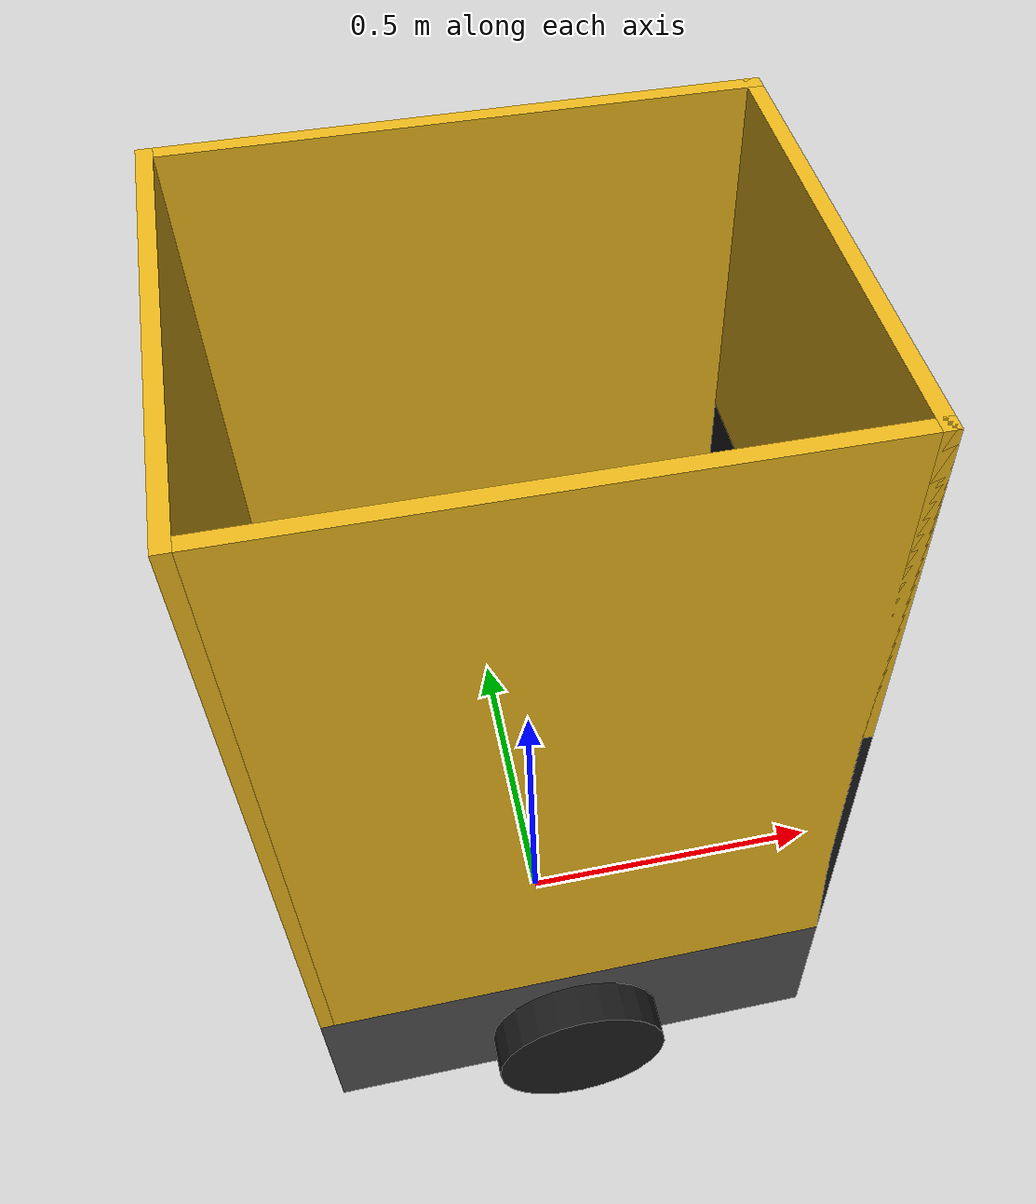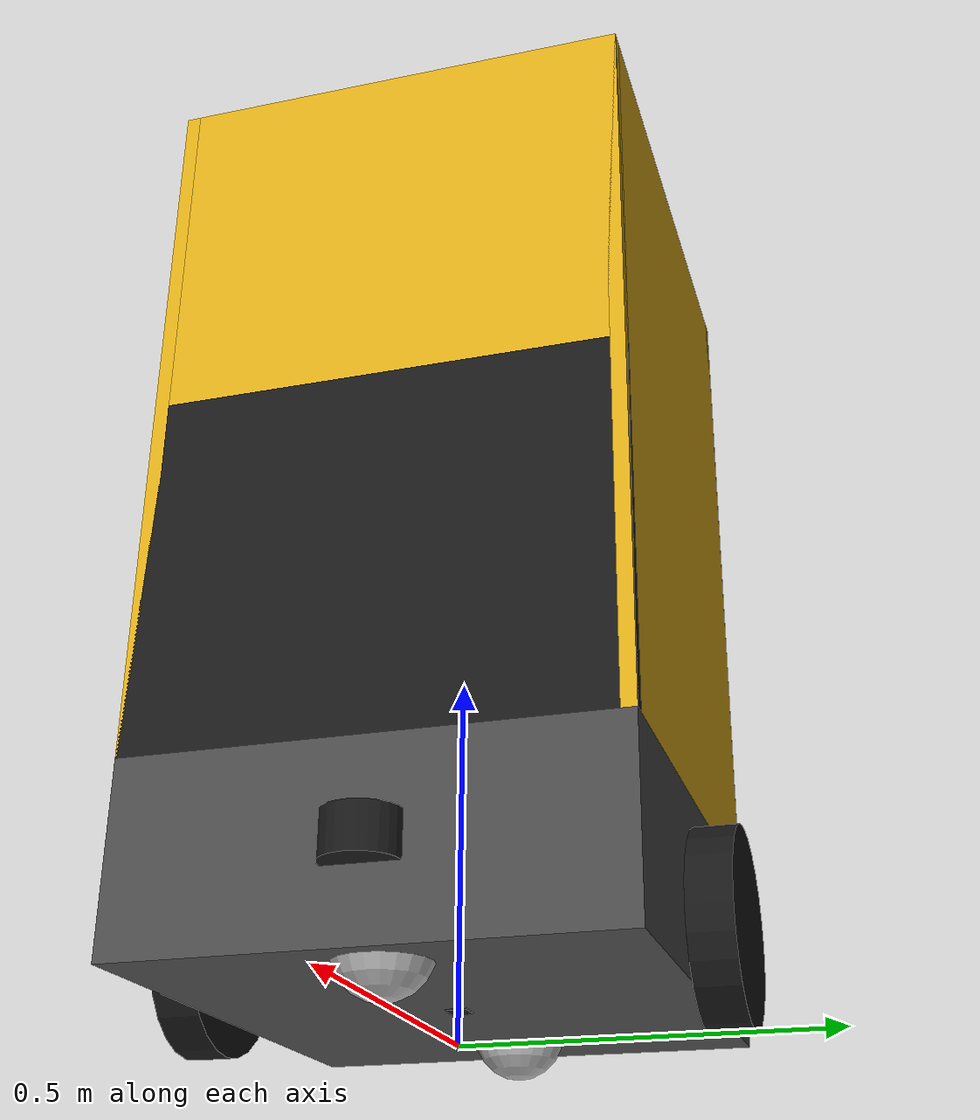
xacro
<?xml version="1.0"?>
<robot name="warehouse_robot" xmlns:xacro="http://www.ros.org/wiki/xacro">

  <!-- Absolute path to the controller manager config, supplied by the launch file -->
  <xacro:arg name="controller_config_path" default=""/>

  <!-- Chassis -->
  <xacro:property name="base_length" value="0.75"/>
  <xacro:property name="base_width" value="0.65"/>
  <xacro:property name="base_height" value="0.25"/>
  <xacro:property name="base_mass" value="16.0"/>

  <!-- Drive wheels -->
  <xacro:property name="wheel_radius" value="0.13"/>
  <xacro:property name="wheel_width" value="0.06"/>
  <xacro:property name="wheel_mass" value="0.75"/>

  <!-- Caster wheels -->
  <xacro:property name="caster_radius" value="0.065"/>
  <xacro:property name="caster_mass" value="0.2"/>

  <!-- Cargo cage: thin walls around the chassis, front wall has a hinged flap -->
  <xacro:property name="cage_wall_height" value="1.0"/>
  <xacro:property name="cage_wall_thickness" value="0.02"/>
  <xacro:property name="cage_flap_height" value="0.5"/>
  <xacro:property name="cage_wall_mass" value="0.5"/>
  <xacro:property name="cage_flap_mass" value="0.3"/>

  <!-- Cage floor: doubles as an ejector belt (gz-sim TrackController) -->
  <xacro:property name="cage_floor_thickness" value="0.01"/>
  <xacro:property name="cage_floor_mass" value="0.4"/>

  <!-- Bottom-facing camera, for reading floor AprilTags -->
  <xacro:property name="bottom_camera_size" value="0.03"/>
  <xacro:property name="bottom_camera_mass" value="0.03"/>
  <!-- Height of the lens above the floor: bigger gap widens the footprint the camera
       sees on the ground, so a tag stays in frame longer as the robot drives over it -->
  <xacro:property name="bottom_camera_ground_gap" value="0.043"/>

  <!-- Front 2D lidar -->
  <xacro:property name="lidar_radius" value="0.05"/>
  <xacro:property name="lidar_height" value="0.06"/>
  <xacro:property name="lidar_mass" value="0.15"/>

  <!-- IMU -->
  <xacro:property name="imu_size" value="0.02"/>
  <xacro:property name="imu_mass" value="0.01"/>

  <!-- Derived placement offsets -->
  <xacro:property name="ground_clearance" value="0.04"/>
  <xacro:property name="base_z" value="${wheel_radius + ground_clearance}"/>
  <xacro:property name="wheel_z_offset" value="${wheel_radius - base_z}"/>
  <xacro:property name="caster_z_offset" value="${caster_radius - base_z}"/>
  <xacro:property name="caster_x_offset" value="${base_length / 2 - caster_radius - 0.02}"/>
  <xacro:property name="bottom_camera_z_offset" value="${bottom_camera_ground_gap + bottom_camera_size/2 - base_z}"/>
  <xacro:property name="cage_base_z" value="${base_height / 2.0}"/>
  <xacro:property name="cage_front_upper_height" value="${cage_wall_height - cage_flap_height}"/>
  <xacro:property name="cage_floor_length" value="${base_length - 2*cage_wall_thickness}"/>
  <xacro:property name="cage_floor_width" value="${base_width - 2*cage_wall_thickness}"/>

  <material name="body_gray">
    <color rgba="0.3 0.3 0.3 1.0"/>
  </material>
  <material name="wheel_black">
    <color rgba="0.1 0.1 0.1 1.0"/>
  </material>
  <material name="caster_silver">
    <color rgba="0.7 0.7 0.7 1.0"/>
  </material>
  <material name="cage_yellow">
    <color rgba="0.9 0.7 0.1 1.0"/>
  </material>

  <!-- base_footprint sits on the ground and is the robot's control/odometry origin -->
  <link name="base_footprint"/>

  <joint name="base_joint" type="fixed">
    <parent link="base_footprint"/>
    <child link="base_link"/>
    <origin xyz="0 0 ${base_z}" rpy="0 0 0"/>
  </joint>

  <link name="base_link">
    <visual>
      <geometry>
        <box size="${base_length} ${base_width} ${base_height}"/>
      </geometry>
      <material name="body_gray"/>
    </visual>
    <collision>
      <geometry>
        <box size="${base_length} ${base_width} ${base_height}"/>
      </geometry>
    </collision>
    <inertial>
      <mass value="${base_mass}"/>
      <inertia
        ixx="${base_mass / 12.0 * (base_width*base_width + base_height*base_height)}" ixy="0" ixz="0"
        iyy="${base_mass / 12.0 * (base_length*base_length + base_height*base_height)}" iyz="0"
        izz="${base_mass / 12.0 * (base_length*base_length + base_width*base_width)}"/>
    </inertial>
  </link>

  <!-- Driven wheel: mounted on the left/right sides, midway along the chassis -->
  <xacro:macro name="drive_wheel" params="prefix reflect">
    <link name="${prefix}_wheel_link">
      <visual>
        <origin xyz="0 0 0" rpy="${pi/2} 0 0"/>
        <geometry>
          <cylinder radius="${wheel_radius}" length="${wheel_width}"/>
        </geometry>
        <material name="wheel_black"/>
      </visual>
      <collision>
        <origin xyz="0 0 0" rpy="${pi/2} 0 0"/>
        <geometry>
          <cylinder radius="${wheel_radius}" length="${wheel_width}"/>
        </geometry>
      </collision>
      <inertial>
        <mass value="${wheel_mass}"/>
        <inertia
          ixx="${wheel_mass / 12.0 * (3*wheel_radius*wheel_radius + wheel_width*wheel_width)}" ixy="0" ixz="0"
          iyy="${wheel_mass / 12.0 * (3*wheel_radius*wheel_radius + wheel_width*wheel_width)}" iyz="0"
          izz="${wheel_mass / 2.0 * wheel_radius*wheel_radius}"/>
      </inertial>
    </link>

    <joint name="${prefix}_wheel_joint" type="continuous">
      <parent link="base_link"/>
      <child link="${prefix}_wheel_link"/>
      <origin xyz="0 ${reflect * (base_width/2 + wheel_width/2)} ${wheel_z_offset}" rpy="0 0 0"/>
      <axis xyz="0 1 0"/>
    </joint>

    <gazebo reference="${prefix}_wheel_link">
      <material>Gazebo/Black</material>
    </gazebo>
  </xacro:macro>

  <xacro:drive_wheel prefix="left" reflect="1"/>
  <xacro:drive_wheel prefix="right" reflect="-1"/>

  <!-- Caster wheel: unpowered, frictionless sphere for front/back support -->
  <xacro:macro name="caster_wheel" params="prefix x_offset">
    <link name="${prefix}_caster_link">
      <visual>
        <geometry>
          <sphere radius="${caster_radius}"/>
        </geometry>
        <material name="caster_silver"/>
      </visual>
      <collision>
        <geometry>
          <sphere radius="${caster_radius}"/>
        </geometry>
      </collision>
      <inertial>
        <mass value="${caster_mass}"/>
        <inertia
          ixx="${2.0/5.0 * caster_mass * caster_radius*caster_radius}" ixy="0" ixz="0"
          iyy="${2.0/5.0 * caster_mass * caster_radius*caster_radius}" iyz="0"
          izz="${2.0/5.0 * caster_mass * caster_radius*caster_radius}"/>
      </inertial>
    </link>

    <joint name="${prefix}_caster_joint" type="fixed">
      <parent link="base_link"/>
      <child link="${prefix}_caster_link"/>
      <origin xyz="${x_offset} 0 ${caster_z_offset}" rpy="0 0 0"/>
    </joint>

    <gazebo reference="${prefix}_caster_link">
      <material>Gazebo/DarkGrey</material>
      <mu1>0.0</mu1>
      <mu2>0.0</mu2>
    </gazebo>
  </xacro:macro>

  <xacro:caster_wheel prefix="front" x_offset="${caster_x_offset}"/>
  <xacro:caster_wheel prefix="back" x_offset="${-caster_x_offset}"/>

  <!-- Fixed cage wall: a thin box sitting on top of the chassis -->
  <xacro:macro name="cage_wall" params="name size_x size_y size_z origin_x origin_y origin_z">
    <link name="${name}_wall_link">
      <visual>
        <geometry>
          <box size="${size_x} ${size_y} ${size_z}"/>
        </geometry>
        <material name="cage_yellow"/>
      </visual>
      <collision>
        <geometry>
          <box size="${size_x} ${size_y} ${size_z}"/>
        </geometry>
      </collision>
      <inertial>
        <mass value="${cage_wall_mass}"/>
        <inertia
          ixx="${cage_wall_mass / 12.0 * (size_y*size_y + size_z*size_z)}" ixy="0" ixz="0"
          iyy="${cage_wall_mass / 12.0 * (size_x*size_x + size_z*size_z)}" iyz="0"
          izz="${cage_wall_mass / 12.0 * (size_x*size_x + size_y*size_y)}"/>
      </inertial>
    </link>

    <joint name="${name}_wall_joint" type="fixed">
      <parent link="base_link"/>
      <child link="${name}_wall_link"/>
      <origin xyz="${origin_x} ${origin_y} ${origin_z}" rpy="0 0 0"/>
    </joint>

    <gazebo reference="${name}_wall_link">
      <material>Gazebo/Yellow</material>
    </gazebo>
  </xacro:macro>

  <xacro:cage_wall name="back"
    size_x="${cage_wall_thickness}" size_y="${base_width}" size_z="${cage_wall_height}"
    origin_x="${-(base_length/2 - cage_wall_thickness/2)}" origin_y="0"
    origin_z="${cage_base_z + cage_wall_height/2}"/>

  <xacro:cage_wall name="left"
    size_x="${base_length}" size_y="${cage_wall_thickness}" size_z="${cage_wall_height}"
    origin_x="0" origin_y="${base_width/2 - cage_wall_thickness/2}"
    origin_z="${cage_base_z + cage_wall_height/2}"/>

  <xacro:cage_wall name="right"
    size_x="${base_length}" size_y="${cage_wall_thickness}" size_z="${cage_wall_height}"
    origin_x="0" origin_y="${-(base_width/2 - cage_wall_thickness/2)}"
    origin_z="${cage_base_z + cage_wall_height/2}"/>

  <!-- Front wall: fixed upper section plus a hinged flap covering the bottom cage_flap_height -->
  <xacro:cage_wall name="front_upper"
    size_x="${cage_wall_thickness}" size_y="${base_width}" size_z="${cage_front_upper_height}"
    origin_x="${base_length/2 - cage_wall_thickness/2}" origin_y="0"
    origin_z="${cage_base_z + cage_flap_height + cage_front_upper_height/2}"/>

  <!-- Front flap: hinged at its bottom edge, folds down/outward to open like a tailgate -->
  <link name="front_flap_link">
    <visual>
      <origin xyz="0 0 ${cage_flap_height/2}" rpy="0 0 0"/>
      <geometry>
        <box size="${cage_wall_thickness} ${base_width} ${cage_flap_height}"/>
      </geometry>
      <material name="wheel_black"/>
    </visual>
    <collision>
      <origin xyz="0 0 ${cage_flap_height/2}" rpy="0 0 0"/>
      <geometry>
        <box size="${cage_wall_thickness} ${base_width} ${cage_flap_height}"/>
      </geometry>
    </collision>
    <inertial>
      <origin xyz="0 0 ${cage_flap_height/2}" rpy="0 0 0"/>
      <mass value="${cage_flap_mass}"/>
      <inertia
        ixx="${cage_flap_mass / 12.0 * (base_width*base_width + cage_flap_height*cage_flap_height)}" ixy="0" ixz="0"
        iyy="${cage_flap_mass / 12.0 * (cage_wall_thickness*cage_wall_thickness + cage_flap_height*cage_flap_height)}" iyz="0"
        izz="${cage_flap_mass / 12.0 * (cage_wall_thickness*cage_wall_thickness + base_width*base_width)}"/>
    </inertial>
  </link>

  <joint name="front_flap_joint" type="revolute">
    <parent link="base_link"/>
    <child link="front_flap_link"/>
    <origin xyz="${base_length/2 - cage_wall_thickness/2} 0 ${cage_base_z}" rpy="0 0 0"/>
    <axis xyz="0 1 0"/>
    <!-- 0 = closed (vertical), pi/2 = fully open (folded flat outward) -->
    <limit lower="0" upper="${pi/2}" effort="10.0" velocity="1.0"/>
    <dynamics damping="0.2" friction="0.05"/>
  </joint>

  <gazebo reference="front_flap_link">
    <material>Gazebo/Black</material>
  </gazebo>

  <link name="cage_floor_link">
    <visual>
      <geometry>
        <box size="${cage_floor_length} ${cage_floor_width} ${cage_floor_thickness}"/>
      </geometry>
      <material name="wheel_black"/>
    </visual>
    <collision>
      <geometry>
        <box size="${cage_floor_length} ${cage_floor_width} ${cage_floor_thickness}"/>
      </geometry>
    </collision>
    <inertial>
      <mass value="${cage_floor_mass}"/>
      <inertia
        ixx="${cage_floor_mass / 12.0 * (cage_floor_width*cage_floor_width + cage_floor_thickness*cage_floor_thickness)}" ixy="0" ixz="0"
        iyy="${cage_floor_mass / 12.0 * (cage_floor_length*cage_floor_length + cage_floor_thickness*cage_floor_thickness)}" iyz="0"
        izz="${cage_floor_mass / 12.0 * (cage_floor_length*cage_floor_length + cage_floor_width*cage_floor_width)}"/>
    </inertial>
  </link>

  <joint name="cage_floor_joint" type="fixed">
    <parent link="base_link"/>
    <child link="cage_floor_link"/>
    <origin xyz="0 0 ${cage_base_z + cage_floor_thickness/2}" rpy="0 0 0"/>
  </joint>

  <!-- Fixed joints get lumped into their parent by the URDF->SDF conversion, which would
       merge cage_floor_link into base_link and leave TrackController nothing to reference -->
  <gazebo reference="cage_floor_joint">
    <disableFixedJointLumping>true</disableFixedJointLumping>
  </gazebo>

  <gazebo reference="cage_floor_link">
    <material>Gazebo/DarkGrey</material>
    <mu1>1.0</mu1>
    <mu2>1.0</mu2>
    <!-- Perpendicular to the belt's travel direction (link +x, toward the flap), so
         TrackController has a well-defined friction axis to apply drive velocity along -->
    <fdir1>0 1 0</fdir1>
  </gazebo>

  <!-- Front lidar: centered on the chassis front face, below the cage, so half the puck
       sticks out past the front edge -->
  <link name="front_lidar_link">
    <visual>
      <geometry>
        <cylinder radius="${lidar_radius}" length="${lidar_height}"/>
      </geometry>
      <material name="wheel_black"/>
    </visual>
    <collision>
      <geometry>
        <cylinder radius="${lidar_radius}" length="${lidar_height}"/>
      </geometry>
    </collision>
    <inertial>
      <mass value="${lidar_mass}"/>
      <inertia
        ixx="${lidar_mass / 12.0 * (3*lidar_radius*lidar_radius + lidar_height*lidar_height)}" ixy="0" ixz="0"
        iyy="${lidar_mass / 12.0 * (3*lidar_radius*lidar_radius + lidar_height*lidar_height)}" iyz="0"
        izz="${lidar_mass / 2.0 * lidar_radius*lidar_radius}"/>
    </inertial>
  </link>

  <joint name="front_lidar_joint" type="fixed">
    <parent link="base_link"/>
    <child link="front_lidar_link"/>
    <origin xyz="${base_length/2} 0 0" rpy="0 0 0"/>
  </joint>

  <gazebo reference="front_lidar_link">
    <material>Gazebo/Black</material>
    <sensor name="front_lidar" type="gpu_lidar">
      <lidar>
        <scan>
          <horizontal>
            <samples>640</samples>
            <resolution>1</resolution>
            <min_angle>${-2.0/3.0*pi}</min_angle>
            <max_angle>${2.0/3.0*pi}</max_angle>
          </horizontal>
        </scan>
        <range>
          <min>0.1</min>
          <max>25.0</max>
          <resolution>0.01</resolution>
        </range>
      </lidar>
      <always_on>true</always_on>
      <update_rate>10</update_rate>
      <visualize>true</visualize>
      <topic>front_lidar</topic>
    </sensor>
  </gazebo>

  <!-- Bottom camera: flush on the chassis underside, centered, pointing straight down
       through the ground clearance gap to read floor AprilTags -->
  <link name="bottom_camera_link">
    <visual>
      <geometry>
        <box size="${bottom_camera_size} ${bottom_camera_size} ${bottom_camera_size}"/>
      </geometry>
      <material name="wheel_black"/>
    </visual>
    <collision>
      <geometry>
        <box size="${bottom_camera_size} ${bottom_camera_size} ${bottom_camera_size}"/>
      </geometry>
    </collision>
    <inertial>
      <mass value="${bottom_camera_mass}"/>
      <inertia
        ixx="${bottom_camera_mass / 6.0 * bottom_camera_size*bottom_camera_size}" ixy="0" ixz="0"
        iyy="${bottom_camera_mass / 6.0 * bottom_camera_size*bottom_camera_size}" iyz="0"
        izz="${bottom_camera_mass / 6.0 * bottom_camera_size*bottom_camera_size}"/>
    </inertial>
  </link>

  <joint name="bottom_camera_joint" type="fixed">
    <parent link="base_link"/>
    <child link="bottom_camera_link"/>
    <origin xyz="0 0 ${bottom_camera_z_offset}" rpy="0 ${pi/2} 0"/>
  </joint>

  <link name="bottom_camera_optical_frame"/>

  <joint name="bottom_camera_optical_joint" type="fixed">
    <parent link="bottom_camera_link"/>
    <child link="bottom_camera_optical_frame"/>
    <origin xyz="0 0 0" rpy="${-pi/2} 0 ${-pi/2}"/>
  </joint>

  <gazebo reference="bottom_camera_link">
    <material>Gazebo/Black</material>
    <sensor name="bottom_camera" type="camera">
      <camera>
        <horizontal_fov>1.9</horizontal_fov>
        <image>
          <width>640</width>
          <height>480</height>
        </image>
        <clip>
          <!-- Lens sits only a couple cm off the floor, so the near plane has to be tiny -->
          <near>0.005</near>
          <far>1.0</far>
        </clip>
        <optical_frame_id>bottom_camera_optical_frame</optical_frame_id>
      </camera>
      <always_on>true</always_on>
      <update_rate>30</update_rate>
      <visualize>true</visualize>
      <topic>bottom_camera</topic>
    </sensor>
  </gazebo>

  <!-- IMU: mounted at the chassis origin -->
  <link name="imu_link">
    <visual>
      <geometry>
        <box size="${imu_size} ${imu_size} ${imu_size}"/>
      </geometry>
      <material name="wheel_black"/>
    </visual>
    <collision>
      <geometry>
        <box size="${imu_size} ${imu_size} ${imu_size}"/>
      </geometry>
    </collision>
    <inertial>
      <mass value="${imu_mass}"/>
      <inertia
        ixx="${imu_mass / 6.0 * imu_size*imu_size}" ixy="0" ixz="0"
        iyy="${imu_mass / 6.0 * imu_size*imu_size}" iyz="0"
        izz="${imu_mass / 6.0 * imu_size*imu_size}"/>
    </inertial>
  </link>

  <joint name="imu_joint" type="fixed">
    <parent link="base_link"/>
    <child link="imu_link"/>
    <origin xyz="0 0 0" rpy="0 0 0"/>
  </joint>

  <gazebo reference="imu_link">
    <sensor name="imu_sensor" type="imu">
      <always_on>true</always_on>
      <update_rate>50</update_rate>
      <topic>imu</topic>
    </sensor>
  </gazebo>

  <!-- ros2_control: the two driven wheels plus the front cage flap are actuated -->
  <ros2_control name="warehouse_robot_system" type="system">
    <hardware>
      <plugin>gz_ros2_control/GazeboSimSystem</plugin>
    </hardware>
    <joint name="left_wheel_joint">
      <command_interface name="velocity"/>
      <state_interface name="position"/>
      <state_interface name="velocity"/>
    </joint>
    <joint name="right_wheel_joint">
      <command_interface name="velocity"/>
      <state_interface name="position"/>
      <state_interface name="velocity"/>
    </joint>
    <joint name="front_flap_joint">
      <command_interface name="position"/>
      <state_interface name="position"/>
      <state_interface name="velocity"/>
    </joint>
  </ros2_control>

  <gazebo>
    <plugin filename="gz_ros2_control-system" name="gz_ros2_control::GazeboSimROS2ControlPlugin">
      <parameters>$(arg controller_config_path)</parameters>
    </plugin>
  </gazebo>

  <gazebo>
    <plugin filename="gz-sim-track-controller-system" name="gz::sim::systems::TrackController">
      <link>cage_floor_link</link>
      <odometry_publish_frequency>10</odometry_publish_frequency>
    </plugin>
  </gazebo>

  <!-- Ground-truth pose for testing: publishes only the robot model's pose (no links/
       sensors/collisions) to /model/warehouse_robot/pose, bridged to ROS in sim.launch.py -->
  <gazebo>
    <plugin filename="gz-sim-pose-publisher-system" name="gz::sim::systems::PosePublisher">
      <publish_model_pose>true</publish_model_pose>
      <publish_link_pose>false</publish_link_pose>
      <publish_nested_model_pose>false</publish_nested_model_pose>
      <publish_collision_pose>false</publish_collision_pose>
      <publish_visual_pose>false</publish_visual_pose>
      <publish_sensor_pose>false</publish_sensor_pose>
      <use_pose_vector_msg>false</use_pose_vector_msg>
      <static_publisher>false</static_publisher>
      <update_frequency>30</update_frequency>
    </plugin>
  </gazebo>

</robot>
